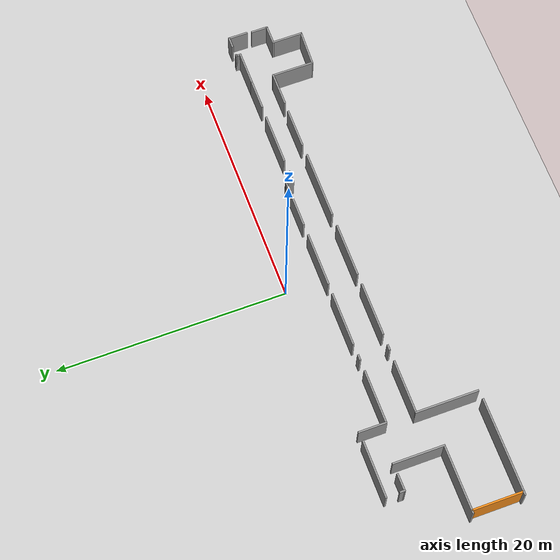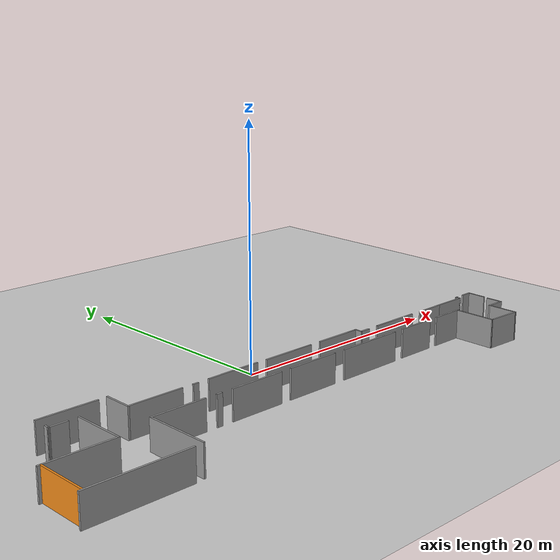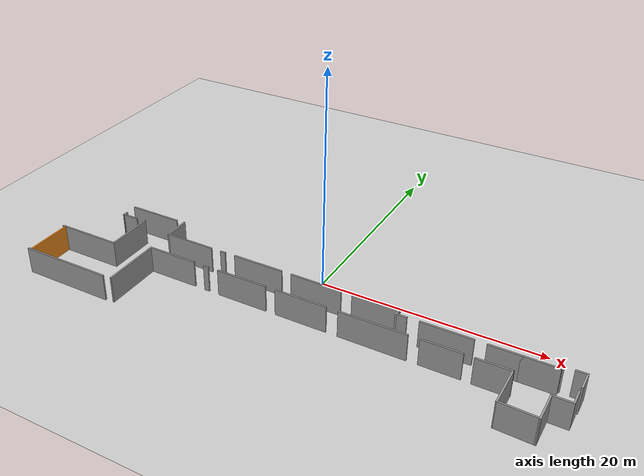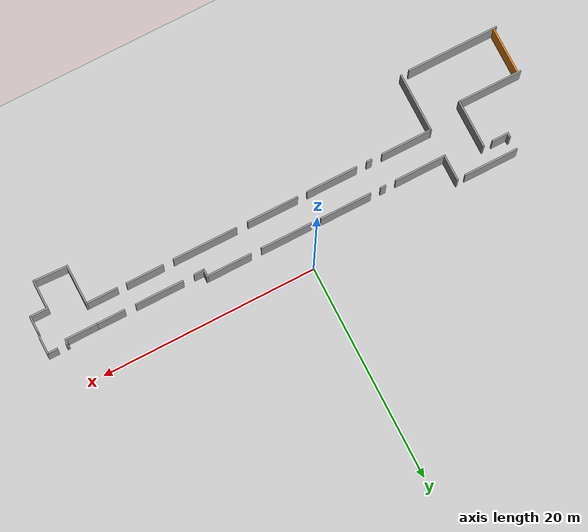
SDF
<sdf version='1.7'>
  <world name='default'>
    <light name='sun' type='directional'>
      <cast_shadows>1</cast_shadows>
      <pose>0 0 10 0 -0 0</pose>
      <diffuse>0.8 0.8 0.8 1</diffuse>
      <specular>0.2 0.2 0.2 1</specular>
      <attenuation>
        <range>1000</range>
        <constant>0.9</constant>
        <linear>0.01</linear>
        <quadratic>0.001</quadratic>
      </attenuation>
      <direction>-0.5 0.1 -0.9</direction>
      <spot>
        <inner_angle>0</inner_angle>
        <outer_angle>0</outer_angle>
        <falloff>0</falloff>
      </spot>
    </light>
    <model name='ground_plane'>
      <static>1</static>
      <link name='link'>
        <collision name='collision'>
          <geometry>
            <plane>
              <normal>0 0 1</normal>
              <size>100 100</size>
            </plane>
          </geometry>
          <surface>
            <friction>
              <ode>
                <mu>100</mu>
                <mu2>50</mu2>
              </ode>
              <torsional>
                <ode/>
              </torsional>
            </friction>
            <contact>
              <ode/>
            </contact>
            <bounce/>
          </surface>
          <max_contacts>10</max_contacts>
        </collision>
        <visual name='visual'>
          <cast_shadows>0</cast_shadows>
          <geometry>
            <plane>
              <normal>0 0 1</normal>
              <size>100 100</size>
            </plane>
          </geometry>
          <material>
            <script>
              <uri>file://media/materials/scripts/gazebo.material</uri>
              <name>Gazebo/Grey</name>
            </script>
          </material>
        </visual>
        <self_collide>0</self_collide>
        <enable_wind>0</enable_wind>
        <kinematic>0</kinematic>
      </link>
    </model>
    <gravity>0 0 -9.8</gravity>
    <magnetic_field>6e-06 2.3e-05 -4.2e-05</magnetic_field>
    <atmosphere type='adiabatic'/>
    <physics type='ode'>
      <max_step_size>0.001</max_step_size>
      <real_time_factor>1</real_time_factor>
      <real_time_update_rate>1000</real_time_update_rate>
    </physics>
    <scene>
      <ambient>0.4 0.4 0.4 1</ambient>
      <background>0.7 0.7 0.7 1</background>
      <shadows>1</shadows>
    </scene>
    <audio>
      <device>default</device>
    </audio>
    <wind/>
    <spherical_coordinates>
      <surface_model>EARTH_WGS84</surface_model>
      <latitude_deg>0</latitude_deg>
      <longitude_deg>0</longitude_deg>
      <elevation>0</elevation>
      <heading_deg>0</heading_deg>
    </spherical_coordinates>

    <include>
      <name>mundo_definitivo_piso2</name>
      <uri>model://mundo_definitivo_piso2</uri>
      <pose>0 0 0 0 0 0</pose>
    </include>

    <gui fullscreen='0'>
      <camera name='user_camera'>
        <pose>0 -34 38 0 0.8 1.5708</pose>
        <view_controller>orbit</view_controller>
        <projection_type>perspective</projection_type>
      </camera>
    </gui>
  </world>
</sdf>

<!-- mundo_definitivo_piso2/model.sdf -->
<sdf version='1.7'>
  <model name='mundo_definitivo_piso2'>
    <pose>0.752962 -0.165006 0 0 -0 0</pose>
    <link name='Wall_100'>
      <collision name='Wall_100_Collision'>
        <geometry>
          <box>
            <size>0.5 0.15 2.5</size>
          </box>
        </geometry>
        <pose>0 0 1.25 0 -0 0</pose>
      </collision>
      <visual name='Wall_100_Visual'>
        <pose>0 0 1.25 0 -0 0</pose>
        <geometry>
          <box>
            <size>0.5 0.15 2.5</size>
          </box>
        </geometry>
        <material>
          <script>
            <uri>file://media/materials/scripts/gazebo.material</uri>
            <name>Gazebo/Grey</name>
          </script>
          <ambient>1 1 1 1</ambient>
        </material>
        <meta>
          <layer>0</layer>
        </meta>
      </visual>
      <pose>-8.23448 -5.77581 0 0 -0 0</pose>
    </link>
    <link name='Wall_102'>
      <collision name='Wall_102_Collision'>
        <geometry>
          <box>
            <size>4.75 0.15 2.5</size>
          </box>
        </geometry>
        <pose>0 0 1.25 0 -0 0</pose>
      </collision>
      <visual name='Wall_102_Visual'>
        <pose>0 0 1.25 0 -0 0</pose>
        <geometry>
          <box>
            <size>4.75 0.15 2.5</size>
          </box>
        </geometry>
        <material>
          <script>
            <uri>file://media/materials/scripts/gazebo.material</uri>
            <name>Gazebo/Grey</name>
          </script>
          <ambient>1 1 1 1</ambient>
        </material>
        <meta>
          <layer>0</layer>
        </meta>
      </visual>
      <pose>-11.7864 -3.22073 0 0 -0 3.14159</pose>
    </link>
    <link name='Wall_104'>
      <collision name='Wall_104_Collision'>
        <geometry>
          <box>
            <size>2.46963 0.15 2.5</size>
          </box>
        </geometry>
        <pose>0 0 1.25 0 -0 0</pose>
      </collision>
      <visual name='Wall_104_Visual'>
        <pose>0 0 1.25 0 -0 0</pose>
        <geometry>
          <box>
            <size>2.46963 0.15 2.5</size>
          </box>
        </geometry>
        <material>
          <script>
            <uri>file://media/materials/scripts/gazebo.material</uri>
            <name>Gazebo/Grey</name>
          </script>
          <ambient>1 1 1 1</ambient>
        </material>
        <meta>
          <layer>0</layer>
        </meta>
      </visual>
      <pose>-14.1016 -2.06094 0 0 -0 1.5708</pose>
    </link>
    <link name='Wall_106'>
      <collision name='Wall_106_Collision'>
        <geometry>
          <box>
            <size>0.5 0.15 2.5</size>
          </box>
        </geometry>
        <pose>0 0 1.25 0 -0 0</pose>
      </collision>
      <visual name='Wall_106_Visual'>
        <pose>0 0 1.25 0 -0 0</pose>
        <geometry>
          <box>
            <size>0.5 0.15 2.5</size>
          </box>
        </geometry>
        <material>
          <script>
            <uri>file://media/materials/scripts/gazebo.material</uri>
            <name>Gazebo/Grey</name>
          </script>
          <ambient>1 1 1 1</ambient>
        </material>
        <meta>
          <layer>0</layer>
        </meta>
      </visual>
      <pose>-8.21947 -3.22073 0 0 -0 3.14159</pose>
    </link>
    <link name='Wall_108'>
      <collision name='Wall_108_Collision'>
        <geometry>
          <box>
            <size>4.75 0.15 2.5</size>
          </box>
        </geometry>
        <pose>0 0 1.25 0 -0 0</pose>
      </collision>
      <visual name='Wall_108_Visual'>
        <pose>0 0 1.25 0 -0 0</pose>
        <geometry>
          <box>
            <size>4.75 0.15 2.5</size>
          </box>
        </geometry>
        <material>
          <script>
            <uri>file://media/materials/scripts/gazebo.material</uri>
            <name>Gazebo/Grey</name>
          </script>
          <ambient>1 1 1 1</ambient>
        </material>
        <meta>
          <layer>0</layer>
        </meta>
      </visual>
      <pose>-4.64944 -3.19032 0 0 -0 0</pose>
    </link>
    <link name='Wall_110'>
      <collision name='Wall_110_Collision'>
        <geometry>
          <box>
            <size>4.75 0.15 2.5</size>
          </box>
        </geometry>
        <pose>0 0 1.25 0 -0 0</pose>
      </collision>
      <visual name='Wall_110_Visual'>
        <pose>0 0 1.25 0 -0 0</pose>
        <geometry>
          <box>
            <size>4.75 0.15 2.5</size>
          </box>
        </geometry>
        <material>
          <script>
            <uri>file://media/materials/scripts/gazebo.material</uri>
            <name>Gazebo/Grey</name>
          </script>
          <ambient>1 1 1 1</ambient>
        </material>
        <meta>
          <layer>0</layer>
        </meta>
      </visual>
      <pose>-4.66465 -5.77581 0 0 -0 0</pose>
    </link>
    <link name='Wall_112'>
      <collision name='Wall_112_Collision'>
        <geometry>
          <box>
            <size>4.75 0.15 2.5</size>
          </box>
        </geometry>
        <pose>0 0 1.25 0 -0 0</pose>
      </collision>
      <visual name='Wall_112_Visual'>
        <pose>0 0 1.25 0 -0 0</pose>
        <geometry>
          <box>
            <size>4.75 0.15 2.5</size>
          </box>
        </geometry>
        <material>
          <script>
            <uri>file://media/materials/scripts/gazebo.material</uri>
            <name>Gazebo/Grey</name>
          </script>
          <ambient>1 1 1 1</ambient>
        </material>
        <meta>
          <layer>0</layer>
        </meta>
      </visual>
      <pose>0.99301 -3.20553 0 0 -0 0</pose>
    </link>
    <link name='Wall_114'>
      <collision name='Wall_114_Collision'>
        <geometry>
          <box>
            <size>4.75 0.15 2.5</size>
          </box>
        </geometry>
        <pose>0 0 1.25 0 -0 0</pose>
      </collision>
      <visual name='Wall_114_Visual'>
        <pose>0 0 1.25 0 -0 0</pose>
        <geometry>
          <box>
            <size>4.75 0.15 2.5</size>
          </box>
        </geometry>
        <material>
          <script>
            <uri>file://media/materials/scripts/gazebo.material</uri>
            <name>Gazebo/Grey</name>
          </script>
          <ambient>1 1 1 1</ambient>
        </material>
        <meta>
          <layer>0</layer>
        </meta>
      </visual>
      <pose>0.977802 -5.7606 0 0 -0 0</pose>
    </link>
    <link name='Wall_116'>
      <collision name='Wall_116_Collision'>
        <geometry>
          <box>
            <size>4.25 0.15 2.5</size>
          </box>
        </geometry>
        <pose>0 0 1.25 0 -0 0</pose>
      </collision>
      <visual name='Wall_116_Visual'>
        <pose>0 0 1.25 0 -0 0</pose>
        <geometry>
          <box>
            <size>4.25 0.15 2.5</size>
          </box>
        </geometry>
        <material>
          <script>
            <uri>file://media/materials/scripts/gazebo.material</uri>
            <name>Gazebo/Grey</name>
          </script>
          <ambient>1 1 1 1</ambient>
        </material>
        <meta>
          <layer>0</layer>
        </meta>
      </visual>
      <pose>6.4615 -3.19032 0 0 -0 0</pose>
    </link>
    <link name='Wall_117'>
      <collision name='Wall_117_Collision'>
        <geometry>
          <box>
            <size>0.750193 0.15 2.5</size>
          </box>
        </geometry>
        <pose>0 0 1.25 0 -0 0</pose>
      </collision>
      <visual name='Wall_117_Visual'>
        <pose>0 0 1.25 0 -0 0</pose>
        <geometry>
          <box>
            <size>0.750193 0.15 2.5</size>
          </box>
        </geometry>
        <material>
          <script>
            <uri>file://media/materials/scripts/gazebo.material</uri>
            <name>Gazebo/Grey</name>
          </script>
          <ambient>1 1 1 1</ambient>
        </material>
        <meta>
          <layer>0</layer>
        </meta>
      </visual>
      <pose>8.49629 -3.49032 0 0 -0 -1.5708</pose>
    </link>
    <link name='Wall_118'>
      <collision name='Wall_118_Collision'>
        <geometry>
          <box>
            <size>1 0.15 2.5</size>
          </box>
        </geometry>
        <pose>0 0 1.25 0 -0 0</pose>
      </collision>
      <visual name='Wall_118_Visual'>
        <pose>0 0 1.25 0 -0 0</pose>
        <geometry>
          <box>
            <size>1 0.15 2.5</size>
          </box>
        </geometry>
        <material>
          <script>
            <uri>file://media/materials/scripts/gazebo.material</uri>
            <name>Gazebo/Grey</name>
          </script>
          <ambient>1 1 1 1</ambient>
        </material>
        <meta>
          <layer>0</layer>
        </meta>
      </visual>
      <pose>8.9365 -3.79032 0 0 -0 0</pose>
    </link>
    <link name='Wall_120'>
      <collision name='Wall_120_Collision'>
        <geometry>
          <box>
            <size>4.5 0.15 2.5</size>
          </box>
        </geometry>
        <pose>0 0 1.25 0 -0 0</pose>
      </collision>
      <visual name='Wall_120_Visual'>
        <pose>0 0 1.25 0 -0 0</pose>
        <geometry>
          <box>
            <size>4.5 0.15 2.5</size>
          </box>
        </geometry>
        <material>
          <script>
            <uri>file://media/materials/scripts/gazebo.material</uri>
            <name>Gazebo/Grey</name>
          </script>
          <ambient>1 1 1 1</ambient>
        </material>
        <meta>
          <layer>0</layer>
        </meta>
      </visual>
      <pose>12.7004 -3.75304 0 0 -0 0</pose>
    </link>
    <link name='Wall_124'>
      <collision name='Wall_124_Collision'>
        <geometry>
          <box>
            <size>3 0.15 2.5</size>
          </box>
        </geometry>
        <pose>0 0 1.25 0 -0 0</pose>
      </collision>
      <visual name='Wall_124_Visual'>
        <pose>0 0 1.25 0 -0 0</pose>
        <geometry>
          <box>
            <size>3 0.15 2.5</size>
          </box>
        </geometry>
        <material>
          <script>
            <uri>file://media/materials/scripts/gazebo.material</uri>
            <name>Gazebo/Grey</name>
          </script>
          <ambient>1 1 1 1</ambient>
        </material>
        <meta>
          <layer>0</layer>
        </meta>
      </visual>
      <pose>17.1388 -5.74539 0 0 -0 3.14159</pose>
    </link>
    <link name='Wall_126'>
      <collision name='Wall_126_Collision'>
        <geometry>
          <box>
            <size>3.5 0.15 2.5</size>
          </box>
        </geometry>
        <pose>0 0 1.25 0 -0 0</pose>
      </collision>
      <visual name='Wall_126_Visual'>
        <pose>0 0 1.25 0 -0 0</pose>
        <geometry>
          <box>
            <size>3.5 0.15 2.5</size>
          </box>
        </geometry>
        <material>
          <script>
            <uri>file://media/materials/scripts/gazebo.material</uri>
            <name>Gazebo/Grey</name>
          </script>
          <ambient>1 1 1 1</ambient>
        </material>
        <meta>
          <layer>0</layer>
        </meta>
      </visual>
      <pose>13.0768 -5.72041 0 0 -0 0</pose>
    </link>
    <link name='Wall_128'>
      <collision name='Wall_128_Collision'>
        <geometry>
          <box>
            <size>6 0.15 2.5</size>
          </box>
        </geometry>
        <pose>0 0 1.25 0 -0 0</pose>
      </collision>
      <visual name='Wall_128_Visual'>
        <pose>0 0 1.25 0 -0 0</pose>
        <geometry>
          <box>
            <size>6 0.15 2.5</size>
          </box>
        </geometry>
        <material>
          <script>
            <uri>file://media/materials/scripts/gazebo.material</uri>
            <name>Gazebo/Grey</name>
          </script>
          <ambient>1 1 1 1</ambient>
        </material>
        <meta>
          <layer>0</layer>
        </meta>
      </visual>
      <pose>7.38832 -5.75453 0 0 -0 0</pose>
    </link>
    <link name='Wall_130'>
      <collision name='Wall_130_Collision'>
        <geometry>
          <box>
            <size>3.75 0.15 2.5</size>
          </box>
        </geometry>
        <pose>0 0 1.25 0 -0 0</pose>
      </collision>
      <visual name='Wall_130_Visual'>
        <pose>0 0 1.25 0 -0 0</pose>
        <geometry>
          <box>
            <size>3.75 0.15 2.5</size>
          </box>
        </geometry>
        <material>
          <script>
            <uri>file://media/materials/scripts/gazebo.material</uri>
            <name>Gazebo/Grey</name>
          </script>
          <ambient>1 1 1 1</ambient>
        </material>
        <meta>
          <layer>0</layer>
        </meta>
      </visual>
      <pose>18.5523 -7.54539 0 0 -0 -1.5708</pose>
    </link>
    <link name='Wall_136'>
      <collision name='Wall_136_Collision'>
        <geometry>
          <box>
            <size>2.75 0.15 2.5</size>
          </box>
        </geometry>
        <pose>0 0 1.25 0 -0 0</pose>
      </collision>
      <visual name='Wall_136_Visual'>
        <pose>0 0 1.25 0 -0 0</pose>
        <geometry>
          <box>
            <size>2.75 0.15 2.5</size>
          </box>
        </geometry>
        <material>
          <script>
            <uri>file://media/materials/scripts/gazebo.material</uri>
            <name>Gazebo/Grey</name>
          </script>
          <ambient>1 1 1 1</ambient>
        </material>
        <meta>
          <layer>0</layer>
        </meta>
      </visual>
      <pose>17.3064 -3.77961 0 0 -0 0</pose>
    </link>
    <link name='Wall_138'>
      <collision name='Wall_138_Collision'>
        <geometry>
          <box>
            <size>3 0.15 2.5</size>
          </box>
        </geometry>
        <pose>0 0 1.25 0 -0 0</pose>
      </collision>
      <visual name='Wall_138_Visual'>
        <pose>0 0 1.25 0 -0 0</pose>
        <geometry>
          <box>
            <size>3 0.15 2.5</size>
          </box>
        </geometry>
        <material>
          <script>
            <uri>file://media/materials/scripts/gazebo.material</uri>
            <name>Gazebo/Grey</name>
          </script>
          <ambient>1 1 1 1</ambient>
        </material>
        <meta>
          <layer>0</layer>
        </meta>
      </visual>
      <pose>20.0314 -3.77961 0 0 -0 0</pose>
    </link>
    <link name='Wall_139'>
      <collision name='Wall_139_Collision'>
        <geometry>
          <box>
            <size>0.5 0.15 2.5</size>
          </box>
        </geometry>
        <pose>0 0 1.25 0 -0 0</pose>
      </collision>
      <visual name='Wall_139_Visual'>
        <pose>0 0 1.25 0 -0 0</pose>
        <geometry>
          <box>
            <size>0.5 0.15 2.5</size>
          </box>
        </geometry>
        <material>
          <script>
            <uri>file://media/materials/scripts/gazebo.material</uri>
            <name>Gazebo/Grey</name>
          </script>
          <ambient>1 1 1 1</ambient>
        </material>
        <meta>
          <layer>0</layer>
        </meta>
      </visual>
      <pose>21.4564 -3.60461 0 0 -0 1.5708</pose>
    </link>
    <link name='Wall_140'>
      <collision name='Wall_140_Collision'>
        <geometry>
          <box>
            <size>0.25 0.15 2.5</size>
          </box>
        </geometry>
        <pose>0 0 1.25 0 -0 0</pose>
      </collision>
      <visual name='Wall_140_Visual'>
        <pose>0 0 1.25 0 -0 0</pose>
        <geometry>
          <box>
            <size>0.25 0.15 2.5</size>
          </box>
        </geometry>
        <material>
          <script>
            <uri>file://media/materials/scripts/gazebo.material</uri>
            <name>Gazebo/Grey</name>
          </script>
          <ambient>1 1 1 1</ambient>
        </material>
        <meta>
          <layer>0</layer>
        </meta>
      </visual>
      <pose>21.5064 -3.42961 0 0 -0 0</pose>
    </link>
    <link name='Wall_147'>
      <collision name='Wall_147_Collision'>
        <geometry>
          <box>
            <size>1 0.15 2.5</size>
          </box>
        </geometry>
        <pose>0 0 1.25 0 -0 0</pose>
      </collision>
      <visual name='Wall_147_Visual'>
        <pose>0 0 1.25 0 -0 0</pose>
        <geometry>
          <box>
            <size>1 0.15 2.5</size>
          </box>
        </geometry>
        <material>
          <script>
            <uri>file://media/materials/scripts/gazebo.material</uri>
            <name>Gazebo/Grey</name>
          </script>
          <ambient>1 1 1 1</ambient>
        </material>
        <meta>
          <layer>0</layer>
        </meta>
      </visual>
      <pose>22.8895 -3.41702 0 0 -0 0</pose>
    </link>
    <link name='Wall_149'>
      <collision name='Wall_149_Collision'>
        <geometry>
          <box>
            <size>1.75 0.15 2.5</size>
          </box>
        </geometry>
        <pose>0 0 1.25 0 -0 0</pose>
      </collision>
      <visual name='Wall_149_Visual'>
        <pose>0 0 1.25 0 -0 0</pose>
        <geometry>
          <box>
            <size>1.75 0.15 2.5</size>
          </box>
        </geometry>
        <material>
          <script>
            <uri>file://media/materials/scripts/gazebo.material</uri>
            <name>Gazebo/Grey</name>
          </script>
          <ambient>1 1 1 1</ambient>
        </material>
        <meta>
          <layer>0</layer>
        </meta>
      </visual>
      <pose>23.3145 -4.21702 0 0 -0 -1.5708</pose>
    </link>
    <link name='Wall_151'>
      <collision name='Wall_151_Collision'>
        <geometry>
          <box>
            <size>1.5 0.15 2.5</size>
          </box>
        </geometry>
        <pose>0 0 1.25 0 -0 0</pose>
      </collision>
      <visual name='Wall_151_Visual'>
        <pose>0 0 1.25 0 -0 0</pose>
        <geometry>
          <box>
            <size>1.5 0.15 2.5</size>
          </box>
        </geometry>
        <material>
          <script>
            <uri>file://media/materials/scripts/gazebo.material</uri>
            <name>Gazebo/Grey</name>
          </script>
          <ambient>1 1 1 1</ambient>
        </material>
        <meta>
          <layer>0</layer>
        </meta>
      </visual>
      <pose>23.2317 -6.20321 0 0 -0 -1.5708</pose>
    </link>
    <link name='Wall_152'>
      <collision name='Wall_152_Collision'>
        <geometry>
          <box>
            <size>1.75 0.15 2.5</size>
          </box>
        </geometry>
        <pose>0 0 1.25 0 -0 0</pose>
      </collision>
      <visual name='Wall_152_Visual'>
        <pose>0 0 1.25 0 -0 0</pose>
        <geometry>
          <box>
            <size>1.75 0.15 2.5</size>
          </box>
        </geometry>
        <material>
          <script>
            <uri>file://media/materials/scripts/gazebo.material</uri>
            <name>Gazebo/Grey</name>
          </script>
          <ambient>1 1 1 1</ambient>
        </material>
        <meta>
          <layer>0</layer>
        </meta>
      </visual>
      <pose>22.4317 -6.87821 0 0 -0 3.14159</pose>
    </link>
    <link name='Wall_153'>
      <collision name='Wall_153_Collision'>
        <geometry>
          <box>
            <size>2.75 0.15 2.5</size>
          </box>
        </geometry>
        <pose>0 0 1.25 0 -0 0</pose>
      </collision>
      <visual name='Wall_153_Visual'>
        <pose>0 0 1.25 0 -0 0</pose>
        <geometry>
          <box>
            <size>2.75 0.15 2.5</size>
          </box>
        </geometry>
        <material>
          <script>
            <uri>file://media/materials/scripts/gazebo.material</uri>
            <name>Gazebo/Grey</name>
          </script>
          <ambient>1 1 1 1</ambient>
        </material>
        <meta>
          <layer>0</layer>
        </meta>
      </visual>
      <pose>21.6317 -8.17821 0 0 -0 -1.5708</pose>
    </link>
    <link name='Wall_154'>
      <collision name='Wall_154_Collision'>
        <geometry>
          <box>
            <size>3.23226 0.15 2.5</size>
          </box>
        </geometry>
        <pose>0 0 1.25 0 -0 0</pose>
      </collision>
      <visual name='Wall_154_Visual'>
        <pose>0 0 1.25 0 -0 0</pose>
        <geometry>
          <box>
            <size>3.23226 0.15 2.5</size>
          </box>
        </geometry>
        <material>
          <script>
            <uri>file://media/materials/scripts/gazebo.material</uri>
            <name>Gazebo/Grey</name>
          </script>
          <ambient>1 1 1 1</ambient>
        </material>
        <meta>
          <layer>0</layer>
        </meta>
      </visual>
      <pose>20.092 -9.4118 0 0 -0 3.09849</pose>
    </link>
    <link name='Wall_81'>
      <collision name='Wall_81_Collision'>
        <geometry>
          <box>
            <size>8.5 0.15 2.5</size>
          </box>
        </geometry>
        <pose>0 0 1.25 0 -0 0</pose>
      </collision>
      <visual name='Wall_81_Visual'>
        <pose>0 0 1.25 0 -0 0</pose>
        <geometry>
          <box>
            <size>8.5 0.15 2.5</size>
          </box>
        </geometry>
        <material>
          <script>
            <uri>file://media/materials/scripts/gazebo.material</uri>
            <name>Gazebo/Grey</name>
          </script>
          <ambient>1 1 1 1</ambient>
        </material>
        <meta>
          <layer>0</layer>
        </meta>
      </visual>
      <pose>-19.1395 -11.2201 0 0 -0 0</pose>
    </link>
    <link name='Wall_83'>
      <collision name='Wall_83_Collision'>
        <geometry>
          <box>
            <size>5.5 0.15 2.5</size>
          </box>
        </geometry>
        <pose>0 0 1.25 0 -0 0</pose>
      </collision>
      <visual name='Wall_83_Visual'>
        <pose>0 0 1.25 0 -0 0</pose>
        <geometry>
          <box>
            <size>5.5 0.15 2.5</size>
          </box>
        </geometry>
        <material>
          <script>
            <uri>file://media/materials/scripts/gazebo.material</uri>
            <name>Gazebo/Grey</name>
          </script>
          <ambient>1 1 1 1</ambient>
        </material>
        <meta>
          <layer>0</layer>
        </meta>
      </visual>
      <pose>-14.128 -8.43908 0 0 -0 1.5708</pose>
    </link>
    <link name='Wall_85'>
      <collision name='Wall_85_Collision'>
        <geometry>
          <box>
            <size>4.5 0.15 2.5</size>
          </box>
        </geometry>
        <pose>0 0 1.25 0 -0 0</pose>
      </collision>
      <visual name='Wall_85_Visual'>
        <pose>0 0 1.25 0 -0 0</pose>
        <geometry>
          <box>
            <size>4.5 0.15 2.5</size>
          </box>
        </geometry>
        <material>
          <script>
            <uri>file://media/materials/scripts/gazebo.material</uri>
            <name>Gazebo/Grey</name>
          </script>
          <ambient>1 1 1 1</ambient>
        </material>
        <meta>
          <layer>0</layer>
        </meta>
      </visual>
      <pose>-17.4435 -4.65687 0 0 -0 1.5708</pose>
    </link>
    <link name='Wall_88'>
      <collision name='Wall_88_Collision'>
        <geometry>
          <box>
            <size>6 0.15 2.5</size>
          </box>
        </geometry>
        <pose>0 0 1.25 0 -0 0</pose>
      </collision>
      <visual name='Wall_88_Visual'>
        <pose>0 0 1.25 0 -0 0</pose>
        <geometry>
          <box>
            <size>6 0.15 2.5</size>
          </box>
        </geometry>
        <material>
          <script>
            <uri>file://media/materials/scripts/gazebo.material</uri>
            <name>Gazebo/Grey</name>
          </script>
          <ambient>1 1 1 1</ambient>
        </material>
        <meta>
          <layer>0</layer>
        </meta>
      </visual>
      <pose>-20.3685 -6.83187 0 0 -0 3.14159</pose>
    </link>
    <link name='Barrera_Escalera'>
      <collision name='Barrera_Escalera_Collision'>
        <geometry>
          <box>
            <size>4.4 0.15 2.5</size>
          </box>
        </geometry>
        <pose>0 0 1.25 0 -0 0</pose>
      </collision>
      <visual name='Barrera_Escalera_Visual'>
        <pose>0 0 1.25 0 -0 0</pose>
        <geometry>
          <box>
            <size>4.4 0.15 2.5</size>
          </box>
        </geometry>
        <material>
          <script>
            <uri>file://media/materials/scripts/gazebo.material</uri>
            <name>Gazebo/Orange</name>
          </script>
          <ambient>1 1 1 1</ambient>
        </material>
        <meta>
          <layer>0</layer>
        </meta>
      </visual>
      <pose>-23.07 -9.026 0 0 -0 1.5708</pose>
    </link>
    <link name='Wall_90'>
      <collision name='Wall_90_Collision'>
        <geometry>
          <box>
            <size>1.57612 0.15 2.5</size>
          </box>
        </geometry>
        <pose>0 0 1.25 0 -0 0</pose>
      </collision>
      <visual name='Wall_90_Visual'>
        <pose>0 0 1.25 0 -0 0</pose>
        <geometry>
          <box>
            <size>1.57612 0.15 2.5</size>
          </box>
        </geometry>
        <material>
          <script>
            <uri>file://media/materials/scripts/gazebo.material</uri>
            <name>Gazebo/Grey</name>
          </script>
          <ambient>1 1 1 1</ambient>
        </material>
        <meta>
          <layer>0</layer>
        </meta>
      </visual>
      <pose>-19.0841 -2.49836 0 0 -0 -3.13088</pose>
    </link>
    <link name='Wall_92'>
      <collision name='Wall_92_Collision'>
        <geometry>
          <box>
            <size>5 0.15 2.5</size>
          </box>
        </geometry>
        <pose>0 0 1.25 0 -0 0</pose>
      </collision>
      <visual name='Wall_92_Visual'>
        <pose>0 0 1.25 0 -0 0</pose>
        <geometry>
          <box>
            <size>5 0.15 2.5</size>
          </box>
        </geometry>
        <material>
          <script>
            <uri>file://media/materials/scripts/gazebo.material</uri>
            <name>Gazebo/Grey</name>
          </script>
          <ambient>1 1 1 1</ambient>
        </material>
        <meta>
          <layer>0</layer>
        </meta>
      </visual>
      <pose>-17.359 -0.939423 0 0 -0 3.14159</pose>
    </link>
    <link name='Wall_96'>
      <collision name='Wall_96_Collision'>
        <geometry>
          <box>
            <size>0.5 0.15 2.5</size>
          </box>
        </geometry>
        <pose>0 0 1.25 0 -0 0</pose>
      </collision>
      <visual name='Wall_96_Visual'>
        <pose>0 0 1.25 0 -0 0</pose>
        <geometry>
          <box>
            <size>0.5 0.15 2.5</size>
          </box>
        </geometry>
        <material>
          <script>
            <uri>file://media/materials/scripts/gazebo.material</uri>
            <name>Gazebo/Grey</name>
          </script>
          <ambient>1 1 1 1</ambient>
        </material>
        <meta>
          <layer>0</layer>
        </meta>
      </visual>
      <pose>-19.797 -2.33099 0 0 -0 1.5708</pose>
    </link>
    <link name='Wall_98'>
      <collision name='Wall_98_Collision'>
        <geometry>
          <box>
            <size>4.75 0.15 2.5</size>
          </box>
        </geometry>
        <pose>0 0 1.25 0 -0 0</pose>
      </collision>
      <visual name='Wall_98_Visual'>
        <pose>0 0 1.25 0 -0 0</pose>
        <geometry>
          <box>
            <size>4.75 0.15 2.5</size>
          </box>
        </geometry>
        <material>
          <script>
            <uri>file://media/materials/scripts/gazebo.material</uri>
            <name>Gazebo/Grey</name>
          </script>
          <ambient>1 1 1 1</ambient>
        </material>
        <meta>
          <layer>0</layer>
        </meta>
      </visual>
      <pose>-11.828 -5.76408 0 0 -0 0</pose>
    </link>
    <static>1</static>
  </model>
</sdf>
